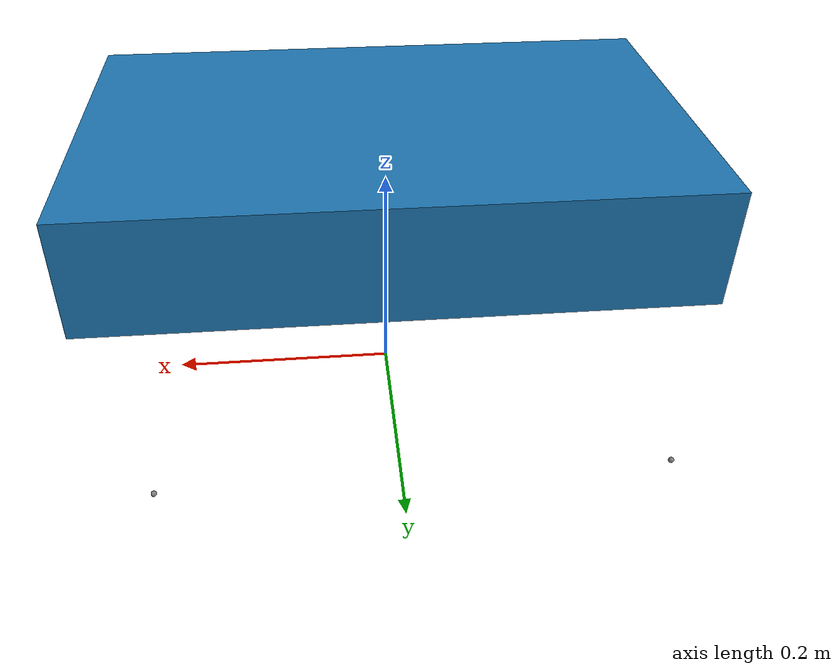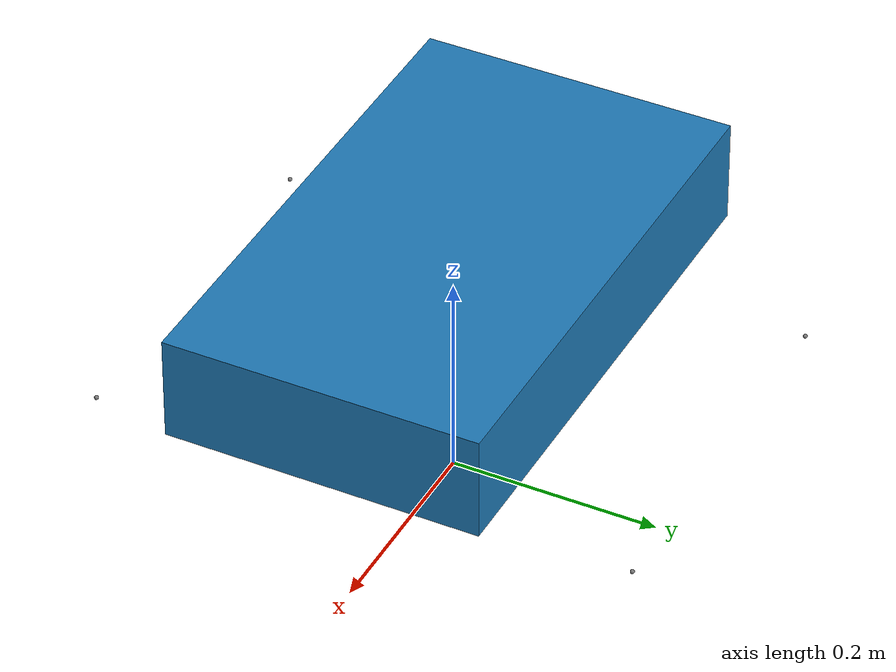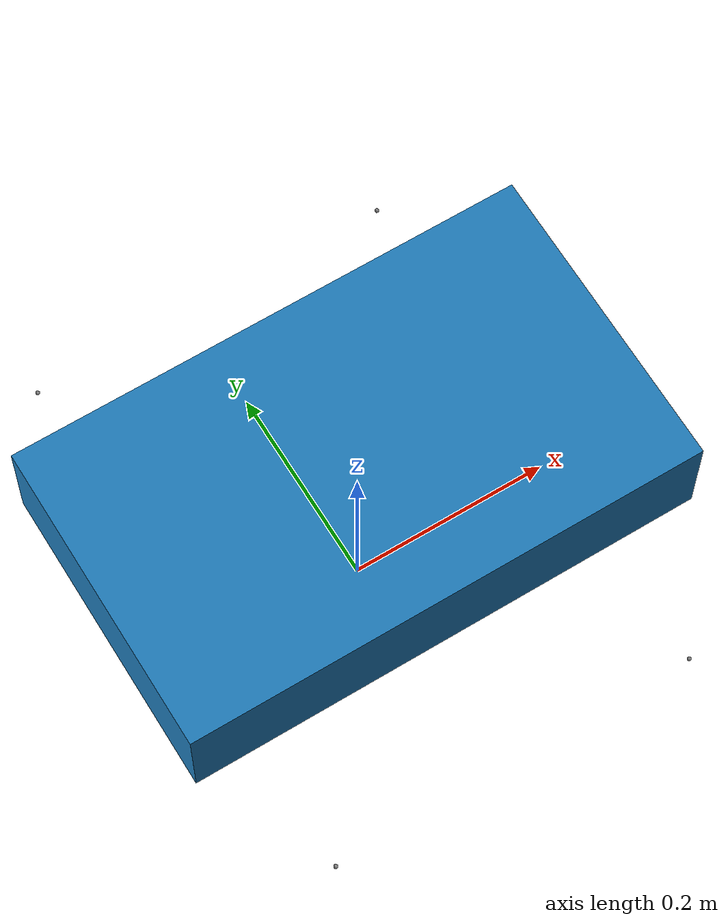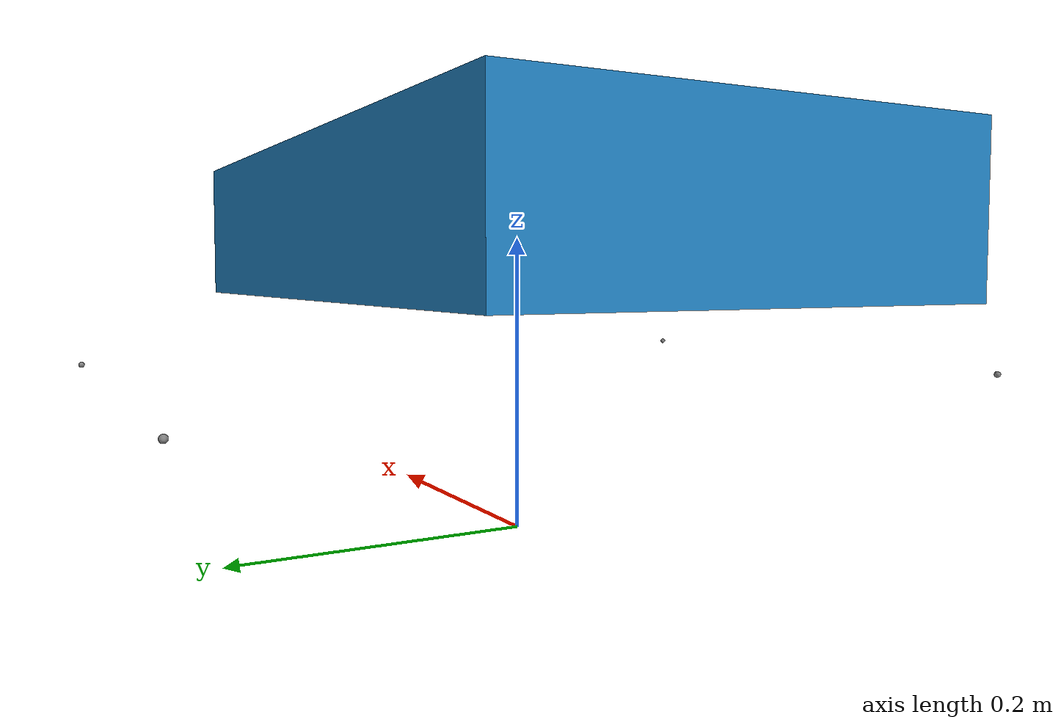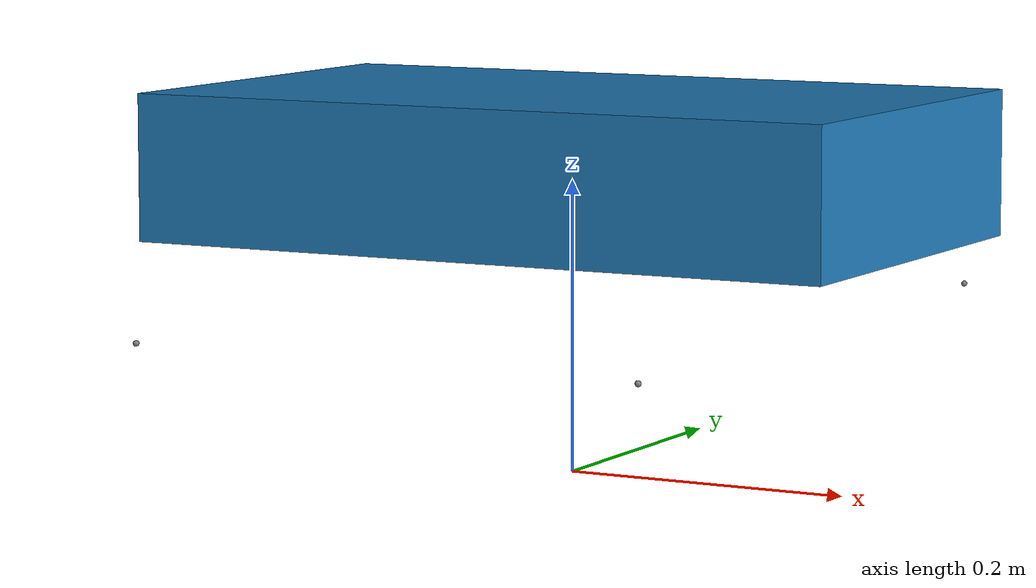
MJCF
<mujoco model="robot-rover">
  <compiler angle="radian" />
  <worldbody>
    <body name="base_link" pos="0 0 0.21">
      <freejoint name="base_freejoint" />
      <inertial pos="0 0 0" mass="4" diaginertia="0.04 0.09 0.1" />
      <geom name="chassis" type="box" size="0.25 0.15 0.05" mass="4" rgba="0.12 0.48 0.72 1" />

      <!-- Component roots attach to these persistent sites. -->
      <site name="front_left_wheel_mount" pos="0.18 0.26 -0.1" euler="-1.5708 0 0" size="0.002" />
      <site name="front_right_wheel_mount" pos="0.18 -0.26 -0.1" euler="1.5708 0 0" size="0.002" />
      <site name="rear_left_wheel_mount" pos="-0.18 0.26 -0.1" euler="-1.5708 0 0" size="0.002" />
      <site name="rear_right_wheel_mount" pos="-0.18 -0.26 -0.1" euler="1.5708 0 0" size="0.002" />
    </body>
  </worldbody>
</mujoco>
